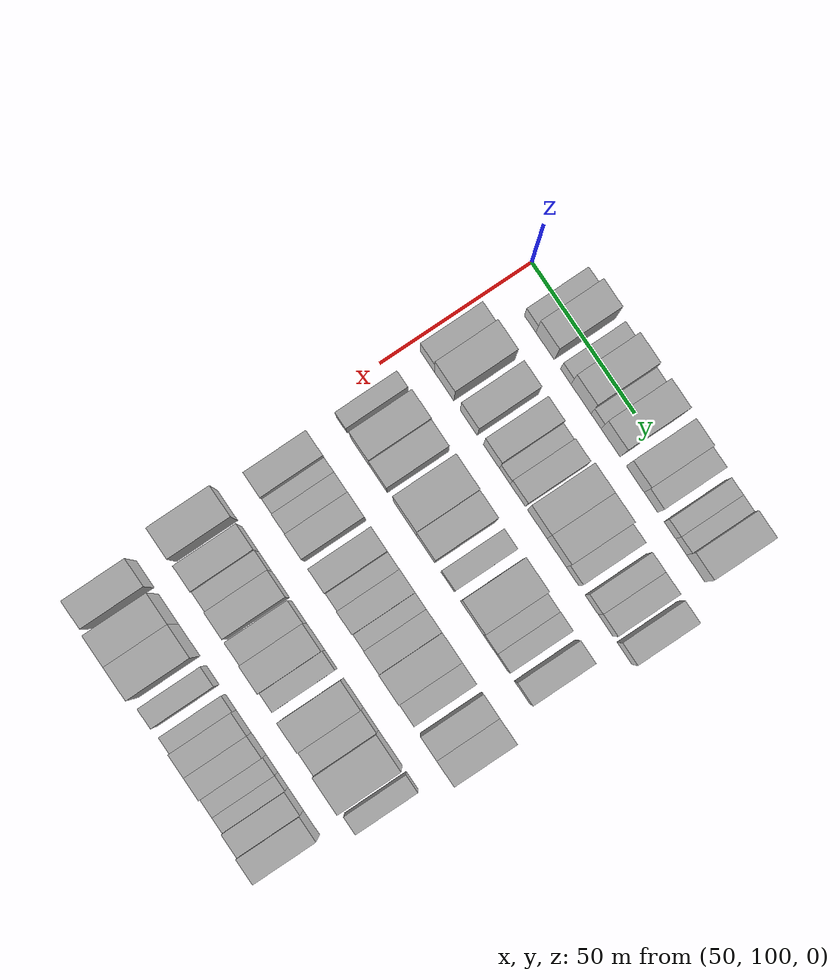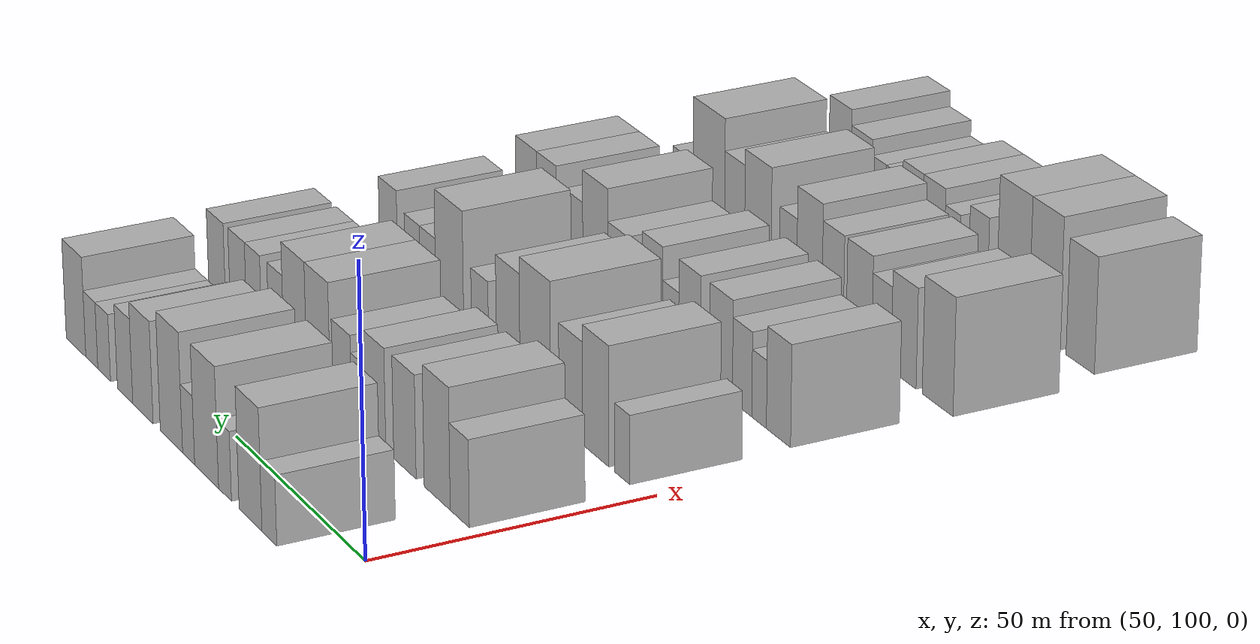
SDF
<sdf version="1.6">
 <world name="default">
  <model name="building_66">
   <static>1</static>
   <pose>50.0000 113.7992 0 0.000000 0.000000 0.000000</pose>
   <link name="link">
    <pose>0 0 6.00 0 0 0</pose>
    <collision name="collision"><geometry><box><size>20.0000 5.6793 12.0000</size></box></geometry></collision>
    <visual name="visual">
     <cast_shadows>0</cast_shadows>
     <geometry><box><size>20.0000 5.6793 12.0000</size></box></geometry>
     <material>
      <script>
       <uri>model://HANNAS_wall/materials/scripts</uri>
       <uri>model://HANNAS_wall/materials/textures</uri>
       <name>vrc/HANNAS_wall</name>
      </script>
     </material>
    </visual>
   </link>
  </model>
  <model name="building_67">
   <static>1</static>
   <pose>50.0000 121.1062 0 0.000000 0.000000 0.000000</pose>
   <link name="link">
    <pose>0 0 10.50 0 0 0</pose>
    <collision name="collision"><geometry><box><size>20.0000 8.9348 21.0000</size></box></geometry></collision>
    <visual name="visual">
     <cast_shadows>0</cast_shadows>
     <geometry><box><size>20.0000 8.9348 21.0000</size></box></geometry>
     <material>
      <script>
       <uri>model://HANNAS_wall/materials/scripts</uri>
       <uri>model://HANNAS_wall/materials/textures</uri>
       <name>vrc/HANNAS_wall</name>
      </script>
     </material>
    </visual>
   </link>
  </model>
  <model name="building_68">
   <static>1</static>
   <pose>50.0000 131.1374 0 0.000000 0.000000 0.000000</pose>
   <link name="link">
    <pose>0 0 6.00 0 0 0</pose>
    <collision name="collision"><geometry><box><size>20.0000 5.1276 12.0000</size></box></geometry></collision>
    <visual name="visual">
     <cast_shadows>0</cast_shadows>
     <geometry><box><size>20.0000 5.1276 12.0000</size></box></geometry>
     <material>
      <script>
       <uri>model://HANNAS_wall/materials/scripts</uri>
       <uri>model://HANNAS_wall/materials/textures</uri>
       <name>vrc/HANNAS_wall</name>
      </script>
     </material>
    </visual>
   </link>
  </model>
  <model name="building_69">
   <static>1</static>
   <pose>50.0000 138.5391 0 0.000000 0.000000 0.000000</pose>
   <link name="link">
    <pose>0 0 10.50 0 0 0</pose>
    <collision name="collision"><geometry><box><size>20.0000 9.6757 21.0000</size></box></geometry></collision>
    <visual name="visual">
     <cast_shadows>0</cast_shadows>
     <geometry><box><size>20.0000 9.6757 21.0000</size></box></geometry>
     <material>
      <script>
       <uri>model://HANNAS_wall/materials/scripts</uri>
       <uri>model://HANNAS_wall/materials/textures</uri>
       <name>vrc/HANNAS_wall</name>
      </script>
     </material>
    </visual>
   </link>
  </model>
  <model name="building_70">
   <static>1</static>
   <pose>50.0000 145.8445 0 0.000000 0.000000 0.000000</pose>
   <link name="link">
    <pose>0 0 6.00 0 0 0</pose>
    <collision name="collision"><geometry><box><size>20.0000 4.9352 12.0000</size></box></geometry></collision>
    <visual name="visual">
     <cast_shadows>0</cast_shadows>
     <geometry><box><size>20.0000 4.9352 12.0000</size></box></geometry>
     <material>
      <script>
       <uri>model://HANNAS_wall/materials/scripts</uri>
       <uri>model://HANNAS_wall/materials/textures</uri>
       <name>vrc/HANNAS_wall</name>
      </script>
     </material>
    </visual>
   </link>
  </model>
  <model name="building_71">
   <static>1</static>
   <pose>50.0000 152.9501 0 0.000000 0.000000 0.000000</pose>
   <link name="link">
    <pose>0 0 10.50 0 0 0</pose>
    <collision name="collision"><geometry><box><size>20.0000 9.2759 21.0000</size></box></geometry></collision>
    <visual name="visual">
     <cast_shadows>0</cast_shadows>
     <geometry><box><size>20.0000 9.2759 21.0000</size></box></geometry>
     <material>
      <script>
       <uri>model://HANNAS_wall/materials/scripts</uri>
       <uri>model://HANNAS_wall/materials/textures</uri>
       <name>vrc/HANNAS_wall</name>
      </script>
     </material>
    </visual>
   </link>
  </model>
  <model name="building_72">
   <static>1</static>
   <pose>50.0000 164.9148 0 0.000000 0.000000 0.000000</pose>
   <link name="link">
    <pose>0 0 9.00 0 0 0</pose>
    <collision name="collision"><geometry><box><size>20.0000 8.6535 18.0000</size></box></geometry></collision>
    <visual name="visual">
     <cast_shadows>0</cast_shadows>
     <geometry><box><size>20.0000 8.6535 18.0000</size></box></geometry>
     <material>
      <script>
       <uri>model://HANNAS_wall/materials/scripts</uri>
       <uri>model://HANNAS_wall/materials/textures</uri>
       <name>vrc/HANNAS_wall</name>
      </script>
     </material>
    </visual>
   </link>
  </model>
  <model name="building_73">
   <static>1</static>
   <pose>50.0000 172.5596 0 0.000000 0.000000 0.000000</pose>
   <link name="link">
    <pose>0 0 7.50 0 0 0</pose>
    <collision name="collision"><geometry><box><size>20.0000 6.6361 15.0000</size></box></geometry></collision>
    <visual name="visual">
     <cast_shadows>0</cast_shadows>
     <geometry><box><size>20.0000 6.6361 15.0000</size></box></geometry>
     <material>
      <script>
       <uri>model://HANNAS_wall/materials/scripts</uri>
       <uri>model://HANNAS_wall/materials/textures</uri>
       <name>vrc/HANNAS_wall</name>
      </script>
     </material>
    </visual>
   </link>
  </model>
  <model name="building_74">
   <static>1</static>
   <pose>50.0000 181.6789 0 0.000000 0.000000 0.000000</pose>
   <link name="link">
    <pose>0 0 6.00 0 0 0</pose>
    <collision name="collision"><geometry><box><size>20.0000 5.6025 12.0000</size></box></geometry></collision>
    <visual name="visual">
     <cast_shadows>0</cast_shadows>
     <geometry><box><size>20.0000 5.6025 12.0000</size></box></geometry>
     <material>
      <script>
       <uri>model://HANNAS_wall/materials/scripts</uri>
       <uri>model://HANNAS_wall/materials/textures</uri>
       <name>vrc/HANNAS_wall</name>
      </script>
     </material>
    </visual>
   </link>
  </model>
  <model name="building_75">
   <static>1</static>
   <pose>50.0000 187.1378 0 0.000000 0.000000 0.000000</pose>
   <link name="link">
    <pose>0 0 6.00 0 0 0</pose>
    <collision name="collision"><geometry><box><size>20.0000 5.3153 12.0000</size></box></geometry></collision>
    <visual name="visual">
     <cast_shadows>0</cast_shadows>
     <geometry><box><size>20.0000 5.3153 12.0000</size></box></geometry>
     <material>
      <script>
       <uri>model://HANNAS_wall/materials/scripts</uri>
       <uri>model://HANNAS_wall/materials/textures</uri>
       <name>vrc/HANNAS_wall</name>
      </script>
     </material>
    </visual>
   </link>
  </model>
  <model name="building_76">
   <static>1</static>
   <pose>50.0000 194.1888 0 0.000000 0.000000 0.000000</pose>
   <link name="link">
    <pose>0 0 9.00 0 0 0</pose>
    <collision name="collision"><geometry><box><size>20.0000 8.7869 18.0000</size></box></geometry></collision>
    <visual name="visual">
     <cast_shadows>0</cast_shadows>
     <geometry><box><size>20.0000 8.7869 18.0000</size></box></geometry>
     <material>
      <script>
       <uri>model://HANNAS_wall/materials/scripts</uri>
       <uri>model://HANNAS_wall/materials/textures</uri>
       <name>vrc/HANNAS_wall</name>
      </script>
     </material>
    </visual>
   </link>
  </model>
  <model name="building_175">
   <static>1</static>
   <pose>79.0000 106.6629 0 0.000000 0.000000 0.000000</pose>
   <link name="link">
    <pose>0 0 7.50 0 0 0</pose>
    <collision name="collision"><geometry><box><size>20.0000 6.8719 15.0000</size></box></geometry></collision>
    <visual name="visual">
     <cast_shadows>0</cast_shadows>
     <geometry><box><size>20.0000 6.8719 15.0000</size></box></geometry>
     <material>
      <script>
       <uri>model://HANNAS_wall/materials/scripts</uri>
       <uri>model://HANNAS_wall/materials/textures</uri>
       <name>vrc/HANNAS_wall</name>
      </script>
     </material>
    </visual>
   </link>
  </model>
  <model name="building_176">
   <static>1</static>
   <pose>79.0000 114.8595 0 0.000000 0.000000 0.000000</pose>
   <link name="link">
    <pose>0 0 10.50 0 0 0</pose>
    <collision name="collision"><geometry><box><size>20.0000 9.5214 21.0000</size></box></geometry></collision>
    <visual name="visual">
     <cast_shadows>0</cast_shadows>
     <geometry><box><size>20.0000 9.5214 21.0000</size></box></geometry>
     <material>
      <script>
       <uri>model://HANNAS_wall/materials/scripts</uri>
       <uri>model://HANNAS_wall/materials/textures</uri>
       <name>vrc/HANNAS_wall</name>
      </script>
     </material>
    </visual>
   </link>
  </model>
  <model name="building_177">
   <static>1</static>
   <pose>79.0000 126.8163 0 0.000000 0.000000 0.000000</pose>
   <link name="link">
    <pose>0 0 9.00 0 0 0</pose>
    <collision name="collision"><geometry><box><size>20.0000 8.3921 18.0000</size></box></geometry></collision>
    <visual name="visual">
     <cast_shadows>0</cast_shadows>
     <geometry><box><size>20.0000 8.3921 18.0000</size></box></geometry>
     <material>
      <script>
       <uri>model://HANNAS_wall/materials/scripts</uri>
       <uri>model://HANNAS_wall/materials/textures</uri>
       <name>vrc/HANNAS_wall</name>
      </script>
     </material>
    </visual>
   </link>
  </model>
  <model name="building_178">
   <static>1</static>
   <pose>79.0000 137.9398 0 0.000000 0.000000 0.000000</pose>
   <link name="link">
    <pose>0 0 9.00 0 0 0</pose>
    <collision name="collision"><geometry><box><size>20.0000 7.8549 18.0000</size></box></geometry></collision>
    <visual name="visual">
     <cast_shadows>0</cast_shadows>
     <geometry><box><size>20.0000 7.8549 18.0000</size></box></geometry>
     <material>
      <script>
       <uri>model://HANNAS_wall/materials/scripts</uri>
       <uri>model://HANNAS_wall/materials/textures</uri>
       <name>vrc/HANNAS_wall</name>
      </script>
     </material>
    </visual>
   </link>
  </model>
  <model name="building_179">
   <static>1</static>
   <pose>79.0000 144.4929 0 0.000000 0.000000 0.000000</pose>
   <link name="link">
    <pose>0 0 6.00 0 0 0</pose>
    <collision name="collision"><geometry><box><size>20.0000 5.2512 12.0000</size></box></geometry></collision>
    <visual name="visual">
     <cast_shadows>0</cast_shadows>
     <geometry><box><size>20.0000 5.2512 12.0000</size></box></geometry>
     <material>
      <script>
       <uri>model://HANNAS_wall/materials/scripts</uri>
       <uri>model://HANNAS_wall/materials/textures</uri>
       <name>vrc/HANNAS_wall</name>
      </script>
     </material>
    </visual>
   </link>
  </model>
  <model name="building_180">
   <static>1</static>
   <pose>79.0000 150.7941 0 0.000000 0.000000 0.000000</pose>
   <link name="link">
    <pose>0 0 7.50 0 0 0</pose>
    <collision name="collision"><geometry><box><size>20.0000 7.3513 15.0000</size></box></geometry></collision>
    <visual name="visual">
     <cast_shadows>0</cast_shadows>
     <geometry><box><size>20.0000 7.3513 15.0000</size></box></geometry>
     <material>
      <script>
       <uri>model://HANNAS_wall/materials/scripts</uri>
       <uri>model://HANNAS_wall/materials/textures</uri>
       <name>vrc/HANNAS_wall</name>
      </script>
     </material>
    </visual>
   </link>
  </model>
  <model name="building_181">
   <static>1</static>
   <pose>79.0000 160.1889 0 0.000000 0.000000 0.000000</pose>
   <link name="link">
    <pose>0 0 10.50 0 0 0</pose>
    <collision name="collision"><geometry><box><size>20.0000 9.4383 21.0000</size></box></geometry></collision>
    <visual name="visual">
     <cast_shadows>0</cast_shadows>
     <geometry><box><size>20.0000 9.4383 21.0000</size></box></geometry>
     <material>
      <script>
       <uri>model://HANNAS_wall/materials/scripts</uri>
       <uri>model://HANNAS_wall/materials/textures</uri>
       <name>vrc/HANNAS_wall</name>
      </script>
     </material>
    </visual>
   </link>
  </model>
  <model name="building_182">
   <static>1</static>
   <pose>79.0000 169.5827 0 0.000000 0.000000 0.000000</pose>
   <link name="link">
    <pose>0 0 10.50 0 0 0</pose>
    <collision name="collision"><geometry><box><size>20.0000 9.3494 21.0000</size></box></geometry></collision>
    <visual name="visual">
     <cast_shadows>0</cast_shadows>
     <geometry><box><size>20.0000 9.3494 21.0000</size></box></geometry>
     <material>
      <script>
       <uri>model://HANNAS_wall/materials/scripts</uri>
       <uri>model://HANNAS_wall/materials/textures</uri>
       <name>vrc/HANNAS_wall</name>
      </script>
     </material>
    </visual>
   </link>
  </model>
  <model name="building_183">
   <static>1</static>
   <pose>79.0000 177.3534 0 0.000000 0.000000 0.000000</pose>
   <link name="link">
    <pose>0 0 7.50 0 0 0</pose>
    <collision name="collision"><geometry><box><size>20.0000 6.1920 15.0000</size></box></geometry></collision>
    <visual name="visual">
     <cast_shadows>0</cast_shadows>
     <geometry><box><size>20.0000 6.1920 15.0000</size></box></geometry>
     <material>
      <script>
       <uri>model://HANNAS_wall/materials/scripts</uri>
       <uri>model://HANNAS_wall/materials/textures</uri>
       <name>vrc/HANNAS_wall</name>
      </script>
     </material>
    </visual>
   </link>
  </model>
  <model name="building_184">
   <static>1</static>
   <pose>79.0000 186.6419 0 0.000000 0.000000 0.000000</pose>
   <link name="link">
    <pose>0 0 7.50 0 0 0</pose>
    <collision name="collision"><geometry><box><size>20.0000 6.3851 15.0000</size></box></geometry></collision>
    <visual name="visual">
     <cast_shadows>0</cast_shadows>
     <geometry><box><size>20.0000 6.3851 15.0000</size></box></geometry>
     <material>
      <script>
       <uri>model://HANNAS_wall/materials/scripts</uri>
       <uri>model://HANNAS_wall/materials/textures</uri>
       <name>vrc/HANNAS_wall</name>
      </script>
     </material>
    </visual>
   </link>
  </model>
  <model name="building_185">
   <static>1</static>
   <pose>79.0000 193.3549 0 0.000000 0.000000 0.000000</pose>
   <link name="link">
    <pose>0 0 7.50 0 0 0</pose>
    <collision name="collision"><geometry><box><size>20.0000 7.0407 15.0000</size></box></geometry></collision>
    <visual name="visual">
     <cast_shadows>0</cast_shadows>
     <geometry><box><size>20.0000 7.0407 15.0000</size></box></geometry>
     <material>
      <script>
       <uri>model://HANNAS_wall/materials/scripts</uri>
       <uri>model://HANNAS_wall/materials/textures</uri>
       <name>vrc/HANNAS_wall</name>
      </script>
     </material>
    </visual>
   </link>
  </model>
  <model name="building_186">
   <static>1</static>
   <pose>79.0000 202.4944 0 0.000000 0.000000 0.000000</pose>
   <link name="link">
    <pose>0 0 7.50 0 0 0</pose>
    <collision name="collision"><geometry><box><size>20.0000 7.2384 15.0000</size></box></geometry></collision>
    <visual name="visual">
     <cast_shadows>0</cast_shadows>
     <geometry><box><size>20.0000 7.2384 15.0000</size></box></geometry>
     <material>
      <script>
       <uri>model://HANNAS_wall/materials/scripts</uri>
       <uri>model://HANNAS_wall/materials/textures</uri>
       <name>vrc/HANNAS_wall</name>
      </script>
     </material>
    </visual>
   </link>
  </model>
  <model name="building_280">
   <static>1</static>
   <pose>108.0000 108.0761 0 0.000000 0.000000 0.000000</pose>
   <link name="link">
    <pose>0 0 6.00 0 0 0</pose>
    <collision name="collision"><geometry><box><size>20.0000 5.2599 12.0000</size></box></geometry></collision>
    <visual name="visual">
     <cast_shadows>0</cast_shadows>
     <geometry><box><size>20.0000 5.2599 12.0000</size></box></geometry>
     <material>
      <script>
       <uri>model://HANNAS_wall/materials/scripts</uri>
       <uri>model://HANNAS_wall/materials/textures</uri>
       <name>vrc/HANNAS_wall</name>
      </script>
     </material>
    </visual>
   </link>
  </model>
  <model name="building_281">
   <static>1</static>
   <pose>108.0000 117.3055 0 0.000000 0.000000 0.000000</pose>
   <link name="link">
    <pose>0 0 10.50 0 0 0</pose>
    <collision name="collision"><geometry><box><size>20.0000 9.1989 21.0000</size></box></geometry></collision>
    <visual name="visual">
     <cast_shadows>0</cast_shadows>
     <geometry><box><size>20.0000 9.1989 21.0000</size></box></geometry>
     <material>
      <script>
       <uri>model://HANNAS_wall/materials/scripts</uri>
       <uri>model://HANNAS_wall/materials/textures</uri>
       <name>vrc/HANNAS_wall</name>
      </script>
     </material>
    </visual>
   </link>
  </model>
  <model name="building_282">
   <static>1</static>
   <pose>108.0000 126.1293 0 0.000000 0.000000 0.000000</pose>
   <link name="link">
    <pose>0 0 9.00 0 0 0</pose>
    <collision name="collision"><geometry><box><size>20.0000 8.4486 18.0000</size></box></geometry></collision>
    <visual name="visual">
     <cast_shadows>0</cast_shadows>
     <geometry><box><size>20.0000 8.4486 18.0000</size></box></geometry>
     <material>
      <script>
       <uri>model://HANNAS_wall/materials/scripts</uri>
       <uri>model://HANNAS_wall/materials/textures</uri>
       <name>vrc/HANNAS_wall</name>
      </script>
     </material>
    </visual>
   </link>
  </model>
  <model name="building_283">
   <static>1</static>
   <pose>108.0000 138.9848 0 0.000000 0.000000 0.000000</pose>
   <link name="link">
    <pose>0 0 12.00 0 0 0</pose>
    <collision name="collision"><geometry><box><size>20.0000 11.2625 24.0000</size></box></geometry></collision>
    <visual name="visual">
     <cast_shadows>0</cast_shadows>
     <geometry><box><size>20.0000 11.2625 24.0000</size></box></geometry>
     <material>
      <script>
       <uri>model://HANNAS_wall/materials/scripts</uri>
       <uri>model://HANNAS_wall/materials/textures</uri>
       <name>vrc/HANNAS_wall</name>
      </script>
     </material>
    </visual>
   </link>
  </model>
  <model name="building_284">
   <static>1</static>
   <pose>108.0000 149.0137 0 0.000000 0.000000 0.000000</pose>
   <link name="link">
    <pose>0 0 10.50 0 0 0</pose>
    <collision name="collision"><geometry><box><size>20.0000 8.7954 21.0000</size></box></geometry></collision>
    <visual name="visual">
     <cast_shadows>0</cast_shadows>
     <geometry><box><size>20.0000 8.7954 21.0000</size></box></geometry>
     <material>
      <script>
       <uri>model://HANNAS_wall/materials/scripts</uri>
       <uri>model://HANNAS_wall/materials/textures</uri>
       <name>vrc/HANNAS_wall</name>
      </script>
     </material>
    </visual>
   </link>
  </model>
  <model name="building_285">
   <static>1</static>
   <pose>108.0000 159.6595 0 0.000000 0.000000 0.000000</pose>
   <link name="link">
    <pose>0 0 7.50 0 0 0</pose>
    <collision name="collision"><geometry><box><size>20.0000 6.4962 15.0000</size></box></geometry></collision>
    <visual name="visual">
     <cast_shadows>0</cast_shadows>
     <geometry><box><size>20.0000 6.4962 15.0000</size></box></geometry>
     <material>
      <script>
       <uri>model://HANNAS_wall/materials/scripts</uri>
       <uri>model://HANNAS_wall/materials/textures</uri>
       <name>vrc/HANNAS_wall</name>
      </script>
     </material>
    </visual>
   </link>
  </model>
  <model name="building_286">
   <static>1</static>
   <pose>108.0000 171.3430 0 0.000000 0.000000 0.000000</pose>
   <link name="link">
    <pose>0 0 12.00 0 0 0</pose>
    <collision name="collision"><geometry><box><size>20.0000 10.8708 24.0000</size></box></geometry></collision>
    <visual name="visual">
     <cast_shadows>0</cast_shadows>
     <geometry><box><size>20.0000 10.8708 24.0000</size></box></geometry>
     <material>
      <script>
       <uri>model://HANNAS_wall/materials/scripts</uri>
       <uri>model://HANNAS_wall/materials/textures</uri>
       <name>vrc/HANNAS_wall</name>
      </script>
     </material>
    </visual>
   </link>
  </model>
  <model name="building_287">
   <static>1</static>
   <pose>108.0000 179.8673 0 0.000000 0.000000 0.000000</pose>
   <link name="link">
    <pose>0 0 7.50 0 0 0</pose>
    <collision name="collision"><geometry><box><size>20.0000 6.1777 15.0000</size></box></geometry></collision>
    <visual name="visual">
     <cast_shadows>0</cast_shadows>
     <geometry><box><size>20.0000 6.1777 15.0000</size></box></geometry>
     <material>
      <script>
       <uri>model://HANNAS_wall/materials/scripts</uri>
       <uri>model://HANNAS_wall/materials/textures</uri>
       <name>vrc/HANNAS_wall</name>
      </script>
     </material>
    </visual>
   </link>
  </model>
  <model name="building_288">
   <static>1</static>
   <pose>108.0000 185.9898 0 0.000000 0.000000 0.000000</pose>
   <link name="link">
    <pose>0 0 7.50 0 0 0</pose>
    <collision name="collision"><geometry><box><size>20.0000 6.0672 15.0000</size></box></geometry></collision>
    <visual name="visual">
     <cast_shadows>0</cast_shadows>
     <geometry><box><size>20.0000 6.0672 15.0000</size></box></geometry>
     <material>
      <script>
       <uri>model://HANNAS_wall/materials/scripts</uri>
       <uri>model://HANNAS_wall/materials/textures</uri>
       <name>vrc/HANNAS_wall</name>
      </script>
     </material>
    </visual>
   </link>
  </model>
  <model name="building_289">
   <static>1</static>
   <pose>108.0000 195.6798 0 0.000000 0.000000 0.000000</pose>
   <link name="link">
    <pose>0 0 9.00 0 0 0</pose>
    <collision name="collision"><geometry><box><size>20.0000 7.3128 18.0000</size></box></geometry></collision>
    <visual name="visual">
     <cast_shadows>0</cast_shadows>
     <geometry><box><size>20.0000 7.3128 18.0000</size></box></geometry>
     <material>
      <script>
       <uri>model://HANNAS_wall/materials/scripts</uri>
       <uri>model://HANNAS_wall/materials/textures</uri>
       <name>vrc/HANNAS_wall</name>
      </script>
     </material>
    </visual>
   </link>
  </model>
  <model name="building_396">
   <static>1</static>
   <pose>137.0000 109.8066 0 0.000000 0.000000 0.000000</pose>
   <link name="link">
    <pose>0 0 9.00 0 0 0</pose>
    <collision name="collision"><geometry><box><size>20.0000 8.0484 18.0000</size></box></geometry></collision>
    <visual name="visual">
     <cast_shadows>0</cast_shadows>
     <geometry><box><size>20.0000 8.0484 18.0000</size></box></geometry>
     <material>
      <script>
       <uri>model://HANNAS_wall/materials/scripts</uri>
       <uri>model://HANNAS_wall/materials/textures</uri>
       <name>vrc/HANNAS_wall</name>
      </script>
     </material>
    </visual>
   </link>
  </model>
  <model name="building_397">
   <static>1</static>
   <pose>137.0000 116.3072 0 0.000000 0.000000 0.000000</pose>
   <link name="link">
    <pose>0 0 6.00 0 0 0</pose>
    <collision name="collision"><geometry><box><size>20.0000 4.9528 12.0000</size></box></geometry></collision>
    <visual name="visual">
     <cast_shadows>0</cast_shadows>
     <geometry><box><size>20.0000 4.9528 12.0000</size></box></geometry>
     <material>
      <script>
       <uri>model://HANNAS_wall/materials/scripts</uri>
       <uri>model://HANNAS_wall/materials/textures</uri>
       <name>vrc/HANNAS_wall</name>
      </script>
     </material>
    </visual>
   </link>
  </model>
  <model name="building_398">
   <static>1</static>
   <pose>137.0000 122.0824 0 0.000000 0.000000 0.000000</pose>
   <link name="link">
    <pose>0 0 7.50 0 0 0</pose>
    <collision name="collision"><geometry><box><size>20.0000 6.5976 15.0000</size></box></geometry></collision>
    <visual name="visual">
     <cast_shadows>0</cast_shadows>
     <geometry><box><size>20.0000 6.5976 15.0000</size></box></geometry>
     <material>
      <script>
       <uri>model://HANNAS_wall/materials/scripts</uri>
       <uri>model://HANNAS_wall/materials/textures</uri>
       <name>vrc/HANNAS_wall</name>
      </script>
     </material>
    </visual>
   </link>
  </model>
  <model name="building_399">
   <static>1</static>
   <pose>137.0000 129.3961 0 0.000000 0.000000 0.000000</pose>
   <link name="link">
    <pose>0 0 9.00 0 0 0</pose>
    <collision name="collision"><geometry><box><size>20.0000 8.0297 18.0000</size></box></geometry></collision>
    <visual name="visual">
     <cast_shadows>0</cast_shadows>
     <geometry><box><size>20.0000 8.0297 18.0000</size></box></geometry>
     <material>
      <script>
       <uri>model://HANNAS_wall/materials/scripts</uri>
       <uri>model://HANNAS_wall/materials/textures</uri>
       <name>vrc/HANNAS_wall</name>
      </script>
     </material>
    </visual>
   </link>
  </model>
  <model name="building_400">
   <static>1</static>
   <pose>137.0000 140.3117 0 0.000000 0.000000 0.000000</pose>
   <link name="link">
    <pose>0 0 9.00 0 0 0</pose>
    <collision name="collision"><geometry><box><size>20.0000 7.8015 18.0000</size></box></geometry></collision>
    <visual name="visual">
     <cast_shadows>0</cast_shadows>
     <geometry><box><size>20.0000 7.8015 18.0000</size></box></geometry>
     <material>
      <script>
       <uri>model://HANNAS_wall/materials/scripts</uri>
       <uri>model://HANNAS_wall/materials/textures</uri>
       <name>vrc/HANNAS_wall</name>
      </script>
     </material>
    </visual>
   </link>
  </model>
  <model name="building_401">
   <static>1</static>
   <pose>137.0000 147.0669 0 0.000000 0.000000 0.000000</pose>
   <link name="link">
    <pose>0 0 6.00 0 0 0</pose>
    <collision name="collision"><geometry><box><size>20.0000 5.7090 12.0000</size></box></geometry></collision>
    <visual name="visual">
     <cast_shadows>0</cast_shadows>
     <geometry><box><size>20.0000 5.7090 12.0000</size></box></geometry>
     <material>
      <script>
       <uri>model://HANNAS_wall/materials/scripts</uri>
       <uri>model://HANNAS_wall/materials/textures</uri>
       <name>vrc/HANNAS_wall</name>
      </script>
     </material>
    </visual>
   </link>
  </model>
  <model name="building_402">
   <static>1</static>
   <pose>137.0000 153.6256 0 0.000000 0.000000 0.000000</pose>
   <link name="link">
    <pose>0 0 9.00 0 0 0</pose>
    <collision name="collision"><geometry><box><size>20.0000 7.4084 18.0000</size></box></geometry></collision>
    <visual name="visual">
     <cast_shadows>0</cast_shadows>
     <geometry><box><size>20.0000 7.4084 18.0000</size></box></geometry>
     <material>
      <script>
       <uri>model://HANNAS_wall/materials/scripts</uri>
       <uri>model://HANNAS_wall/materials/textures</uri>
       <name>vrc/HANNAS_wall</name>
      </script>
     </material>
    </visual>
   </link>
  </model>
  <model name="building_403">
   <static>1</static>
   <pose>137.0000 159.9444 0 0.000000 0.000000 0.000000</pose>
   <link name="link">
    <pose>0 0 6.00 0 0 0</pose>
    <collision name="collision"><geometry><box><size>20.0000 5.2292 12.0000</size></box></geometry></collision>
    <visual name="visual">
     <cast_shadows>0</cast_shadows>
     <geometry><box><size>20.0000 5.2292 12.0000</size></box></geometry>
     <material>
      <script>
       <uri>model://HANNAS_wall/materials/scripts</uri>
       <uri>model://HANNAS_wall/materials/textures</uri>
       <name>vrc/HANNAS_wall</name>
      </script>
     </material>
    </visual>
   </link>
  </model>
  <model name="building_404">
   <static>1</static>
   <pose>137.0000 166.2945 0 0.000000 0.000000 0.000000</pose>
   <link name="link">
    <pose>0 0 7.50 0 0 0</pose>
    <collision name="collision"><geometry><box><size>20.0000 7.4710 15.0000</size></box></geometry></collision>
    <visual name="visual">
     <cast_shadows>0</cast_shadows>
     <geometry><box><size>20.0000 7.4710 15.0000</size></box></geometry>
     <material>
      <script>
       <uri>model://HANNAS_wall/materials/scripts</uri>
       <uri>model://HANNAS_wall/materials/textures</uri>
       <name>vrc/HANNAS_wall</name>
      </script>
     </material>
    </visual>
   </link>
  </model>
  <model name="building_405">
   <static>1</static>
   <pose>137.0000 174.7302 0 0.000000 0.000000 0.000000</pose>
   <link name="link">
    <pose>0 0 10.50 0 0 0</pose>
    <collision name="collision"><geometry><box><size>20.0000 9.4004 21.0000</size></box></geometry></collision>
    <visual name="visual">
     <cast_shadows>0</cast_shadows>
     <geometry><box><size>20.0000 9.4004 21.0000</size></box></geometry>
     <material>
      <script>
       <uri>model://HANNAS_wall/materials/scripts</uri>
       <uri>model://HANNAS_wall/materials/textures</uri>
       <name>vrc/HANNAS_wall</name>
      </script>
     </material>
    </visual>
   </link>
  </model>
  <model name="building_406">
   <static>1</static>
   <pose>137.0000 182.9729 0 0.000000 0.000000 0.000000</pose>
   <link name="link">
    <pose>0 0 7.50 0 0 0</pose>
    <collision name="collision"><geometry><box><size>20.0000 7.0850 15.0000</size></box></geometry></collision>
    <visual name="visual">
     <cast_shadows>0</cast_shadows>
     <geometry><box><size>20.0000 7.0850 15.0000</size></box></geometry>
     <material>
      <script>
       <uri>model://HANNAS_wall/materials/scripts</uri>
       <uri>model://HANNAS_wall/materials/textures</uri>
       <name>vrc/HANNAS_wall</name>
      </script>
     </material>
    </visual>
   </link>
  </model>
  <model name="building_407">
   <static>1</static>
   <pose>137.0000 193.3287 0 0.000000 0.000000 0.000000</pose>
   <link name="link">
    <pose>0 0 9.00 0 0 0</pose>
    <collision name="collision"><geometry><box><size>20.0000 7.6265 18.0000</size></box></geometry></collision>
    <visual name="visual">
     <cast_shadows>0</cast_shadows>
     <geometry><box><size>20.0000 7.6265 18.0000</size></box></geometry>
     <material>
      <script>
       <uri>model://HANNAS_wall/materials/scripts</uri>
       <uri>model://HANNAS_wall/materials/textures</uri>
       <name>vrc/HANNAS_wall</name>
      </script>
     </material>
    </visual>
   </link>
  </model>
  <model name="building_408">
   <static>1</static>
   <pose>137.0000 201.2691 0 0.000000 0.000000 0.000000</pose>
   <link name="link">
    <pose>0 0 9.00 0 0 0</pose>
    <collision name="collision"><geometry><box><size>20.0000 8.2543 18.0000</size></box></geometry></collision>
    <visual name="visual">
     <cast_shadows>0</cast_shadows>
     <geometry><box><size>20.0000 8.2543 18.0000</size></box></geometry>
     <material>
      <script>
       <uri>model://HANNAS_wall/materials/scripts</uri>
       <uri>model://HANNAS_wall/materials/textures</uri>
       <name>vrc/HANNAS_wall</name>
      </script>
     </material>
    </visual>
   </link>
  </model>
  <model name="building_517">
   <static>1</static>
   <pose>166.0000 108.9870 0 0.000000 0.000000 0.000000</pose>
   <link name="link">
    <pose>0 0 10.50 0 0 0</pose>
    <collision name="collision"><geometry><box><size>20.0000 9.9068 21.0000</size></box></geometry></collision>
    <visual name="visual">
     <cast_shadows>0</cast_shadows>
     <geometry><box><size>20.0000 9.9068 21.0000</size></box></geometry>
     <material>
      <script>
       <uri>model://HANNAS_wall/materials/scripts</uri>
       <uri>model://HANNAS_wall/materials/textures</uri>
       <name>vrc/HANNAS_wall</name>
      </script>
     </material>
    </visual>
   </link>
  </model>
  <model name="building_518">
   <static>1</static>
   <pose>166.0000 120.0534 0 0.000000 0.000000 0.000000</pose>
   <link name="link">
    <pose>0 0 9.00 0 0 0</pose>
    <collision name="collision"><geometry><box><size>20.0000 8.2260 18.0000</size></box></geometry></collision>
    <visual name="visual">
     <cast_shadows>0</cast_shadows>
     <geometry><box><size>20.0000 8.2260 18.0000</size></box></geometry>
     <material>
      <script>
       <uri>model://HANNAS_wall/materials/scripts</uri>
       <uri>model://HANNAS_wall/materials/textures</uri>
       <name>vrc/HANNAS_wall</name>
      </script>
     </material>
    </visual>
   </link>
  </model>
  <model name="building_519">
   <static>1</static>
   <pose>166.0000 127.3998 0 0.000000 0.000000 0.000000</pose>
   <link name="link">
    <pose>0 0 7.50 0 0 0</pose>
    <collision name="collision"><geometry><box><size>20.0000 6.4667 15.0000</size></box></geometry></collision>
    <visual name="visual">
     <cast_shadows>0</cast_shadows>
     <geometry><box><size>20.0000 6.4667 15.0000</size></box></geometry>
     <material>
      <script>
       <uri>model://HANNAS_wall/materials/scripts</uri>
       <uri>model://HANNAS_wall/materials/textures</uri>
       <name>vrc/HANNAS_wall</name>
      </script>
     </material>
    </visual>
   </link>
  </model>
  <model name="building_520">
   <static>1</static>
   <pose>166.0000 134.9332 0 0.000000 0.000000 0.000000</pose>
   <link name="link">
    <pose>0 0 9.00 0 0 0</pose>
    <collision name="collision"><geometry><box><size>20.0000 8.6002 18.0000</size></box></geometry></collision>
    <visual name="visual">
     <cast_shadows>0</cast_shadows>
     <geometry><box><size>20.0000 8.6002 18.0000</size></box></geometry>
     <material>
      <script>
       <uri>model://HANNAS_wall/materials/scripts</uri>
       <uri>model://HANNAS_wall/materials/textures</uri>
       <name>vrc/HANNAS_wall</name>
      </script>
     </material>
    </visual>
   </link>
  </model>
  <model name="building_521">
   <static>1</static>
   <pose>166.0000 143.9181 0 0.000000 0.000000 0.000000</pose>
   <link name="link">
    <pose>0 0 9.00 0 0 0</pose>
    <collision name="collision"><geometry><box><size>20.0000 7.3695 18.0000</size></box></geometry></collision>
    <visual name="visual">
     <cast_shadows>0</cast_shadows>
     <geometry><box><size>20.0000 7.3695 18.0000</size></box></geometry>
     <material>
      <script>
       <uri>model://HANNAS_wall/materials/scripts</uri>
       <uri>model://HANNAS_wall/materials/textures</uri>
       <name>vrc/HANNAS_wall</name>
      </script>
     </material>
    </visual>
   </link>
  </model>
  <model name="building_522">
   <static>1</static>
   <pose>166.0000 152.0084 0 0.000000 0.000000 0.000000</pose>
   <link name="link">
    <pose>0 0 10.50 0 0 0</pose>
    <collision name="collision"><geometry><box><size>20.0000 8.8113 21.0000</size></box></geometry></collision>
    <visual name="visual">
     <cast_shadows>0</cast_shadows>
     <geometry><box><size>20.0000 8.8113 21.0000</size></box></geometry>
     <material>
      <script>
       <uri>model://HANNAS_wall/materials/scripts</uri>
       <uri>model://HANNAS_wall/materials/textures</uri>
       <name>vrc/HANNAS_wall</name>
      </script>
     </material>
    </visual>
   </link>
  </model>
  <model name="building_523">
   <static>1</static>
   <pose>166.0000 159.4506 0 0.000000 0.000000 0.000000</pose>
   <link name="link">
    <pose>0 0 7.50 0 0 0</pose>
    <collision name="collision"><geometry><box><size>20.0000 6.0730 15.0000</size></box></geometry></collision>
    <visual name="visual">
     <cast_shadows>0</cast_shadows>
     <geometry><box><size>20.0000 6.0730 15.0000</size></box></geometry>
     <material>
      <script>
       <uri>model://HANNAS_wall/materials/scripts</uri>
       <uri>model://HANNAS_wall/materials/textures</uri>
       <name>vrc/HANNAS_wall</name>
      </script>
     </material>
    </visual>
   </link>
  </model>
  <model name="building_524">
   <static>1</static>
   <pose>166.0000 170.2434 0 0.000000 0.000000 0.000000</pose>
   <link name="link">
    <pose>0 0 10.50 0 0 0</pose>
    <collision name="collision"><geometry><box><size>20.0000 9.5127 21.0000</size></box></geometry></collision>
    <visual name="visual">
     <cast_shadows>0</cast_shadows>
     <geometry><box><size>20.0000 9.5127 21.0000</size></box></geometry>
     <material>
      <script>
       <uri>model://HANNAS_wall/materials/scripts</uri>
       <uri>model://HANNAS_wall/materials/textures</uri>
       <name>vrc/HANNAS_wall</name>
      </script>
     </material>
    </visual>
   </link>
  </model>
  <model name="building_525">
   <static>1</static>
   <pose>166.0000 178.6585 0 0.000000 0.000000 0.000000</pose>
   <link name="link">
    <pose>0 0 9.00 0 0 0</pose>
    <collision name="collision"><geometry><box><size>20.0000 7.3175 18.0000</size></box></geometry></collision>
    <visual name="visual">
     <cast_shadows>0</cast_shadows>
     <geometry><box><size>20.0000 7.3175 18.0000</size></box></geometry>
     <material>
      <script>
       <uri>model://HANNAS_wall/materials/scripts</uri>
       <uri>model://HANNAS_wall/materials/textures</uri>
       <name>vrc/HANNAS_wall</name>
      </script>
     </material>
    </visual>
   </link>
  </model>
  <model name="building_526">
   <static>1</static>
   <pose>166.0000 188.1484 0 0.000000 0.000000 0.000000</pose>
   <link name="link">
    <pose>0 0 12.00 0 0 0</pose>
    <collision name="collision"><geometry><box><size>20.0000 11.6623 24.0000</size></box></geometry></collision>
    <visual name="visual">
     <cast_shadows>0</cast_shadows>
     <geometry><box><size>20.0000 11.6623 24.0000</size></box></geometry>
     <material>
      <script>
       <uri>model://HANNAS_wall/materials/scripts</uri>
       <uri>model://HANNAS_wall/materials/textures</uri>
       <name>vrc/HANNAS_wall</name>
      </script>
     </material>
    </visual>
   </link>
  </model>
  <model name="building_527">
   <static>1</static>
   <pose>166.0000 198.8523 0 0.000000 0.000000 0.000000</pose>
   <link name="link">
    <pose>0 0 6.00 0 0 0</pose>
    <collision name="collision"><geometry><box><size>20.0000 5.7455 12.0000</size></box></geometry></collision>
    <visual name="visual">
     <cast_shadows>0</cast_shadows>
     <geometry><box><size>20.0000 5.7455 12.0000</size></box></geometry>
     <material>
      <script>
       <uri>model://HANNAS_wall/materials/scripts</uri>
       <uri>model://HANNAS_wall/materials/textures</uri>
       <name>vrc/HANNAS_wall</name>
      </script>
     </material>
    </visual>
   </link>
  </model>
  <model name="building_636">
   <static>1</static>
   <pose>195.0000 111.9896 0 0.000000 0.000000 0.000000</pose>
   <link name="link">
    <pose>0 0 10.50 0 0 0</pose>
    <collision name="collision"><geometry><box><size>20.0000 8.8862 21.0000</size></box></geometry></collision>
    <visual name="visual">
     <cast_shadows>0</cast_shadows>
     <geometry><box><size>20.0000 8.8862 21.0000</size></box></geometry>
     <material>
      <script>
       <uri>model://HANNAS_wall/materials/scripts</uri>
       <uri>model://HANNAS_wall/materials/textures</uri>
       <name>vrc/HANNAS_wall</name>
      </script>
     </material>
    </visual>
   </link>
  </model>
  <model name="building_637">
   <static>1</static>
   <pose>195.0000 123.3752 0 0.000000 0.000000 0.000000</pose>
   <link name="link">
    <pose>0 0 12.00 0 0 0</pose>
    <collision name="collision"><geometry><box><size>20.0000 9.8851 24.0000</size></box></geometry></collision>
    <visual name="visual">
     <cast_shadows>0</cast_shadows>
     <geometry><box><size>20.0000 9.8851 24.0000</size></box></geometry>
     <material>
      <script>
       <uri>model://HANNAS_wall/materials/scripts</uri>
       <uri>model://HANNAS_wall/materials/textures</uri>
       <name>vrc/HANNAS_wall</name>
      </script>
     </material>
    </visual>
   </link>
  </model>
  <model name="building_638">
   <static>1</static>
   <pose>195.0000 133.5826 0 0.000000 0.000000 0.000000</pose>
   <link name="link">
    <pose>0 0 12.00 0 0 0</pose>
    <collision name="collision"><geometry><box><size>20.0000 10.5297 24.0000</size></box></geometry></collision>
    <visual name="visual">
     <cast_shadows>0</cast_shadows>
     <geometry><box><size>20.0000 10.5297 24.0000</size></box></geometry>
     <material>
      <script>
       <uri>model://HANNAS_wall/materials/scripts</uri>
       <uri>model://HANNAS_wall/materials/textures</uri>
       <name>vrc/HANNAS_wall</name>
      </script>
     </material>
    </visual>
   </link>
  </model>
  <model name="building_639">
   <static>1</static>
   <pose>195.0000 145.0307 0 0.000000 0.000000 0.000000</pose>
   <link name="link">
    <pose>0 0 7.50 0 0 0</pose>
    <collision name="collision"><geometry><box><size>20.0000 6.3666 15.0000</size></box></geometry></collision>
    <visual name="visual">
     <cast_shadows>0</cast_shadows>
     <geometry><box><size>20.0000 6.3666 15.0000</size></box></geometry>
     <material>
      <script>
       <uri>model://HANNAS_wall/materials/scripts</uri>
       <uri>model://HANNAS_wall/materials/textures</uri>
       <name>vrc/HANNAS_wall</name>
      </script>
     </material>
    </visual>
   </link>
  </model>
  <model name="building_640">
   <static>1</static>
   <pose>195.0000 153.8205 0 0.000000 0.000000 0.000000</pose>
   <link name="link">
    <pose>0 0 6.00 0 0 0</pose>
    <collision name="collision"><geometry><box><size>20.0000 5.2128 12.0000</size></box></geometry></collision>
    <visual name="visual">
     <cast_shadows>0</cast_shadows>
     <geometry><box><size>20.0000 5.2128 12.0000</size></box></geometry>
     <material>
      <script>
       <uri>model://HANNAS_wall/materials/scripts</uri>
       <uri>model://HANNAS_wall/materials/textures</uri>
       <name>vrc/HANNAS_wall</name>
      </script>
     </material>
    </visual>
   </link>
  </model>
  <model name="building_641">
   <static>1</static>
   <pose>195.0000 160.1325 0 0.000000 0.000000 0.000000</pose>
   <link name="link">
    <pose>0 0 7.50 0 0 0</pose>
    <collision name="collision"><geometry><box><size>20.0000 7.4114 15.0000</size></box></geometry></collision>
    <visual name="visual">
     <cast_shadows>0</cast_shadows>
     <geometry><box><size>20.0000 7.4114 15.0000</size></box></geometry>
     <material>
      <script>
       <uri>model://HANNAS_wall/materials/scripts</uri>
       <uri>model://HANNAS_wall/materials/textures</uri>
       <name>vrc/HANNAS_wall</name>
      </script>
     </material>
    </visual>
   </link>
  </model>
  <model name="building_642">
   <static>1</static>
   <pose>195.0000 167.4124 0 0.000000 0.000000 0.000000</pose>
   <link name="link">
    <pose>0 0 7.50 0 0 0</pose>
    <collision name="collision"><geometry><box><size>20.0000 7.1484 15.0000</size></box></geometry></collision>
    <visual name="visual">
     <cast_shadows>0</cast_shadows>
     <geometry><box><size>20.0000 7.1484 15.0000</size></box></geometry>
     <material>
      <script>
       <uri>model://HANNAS_wall/materials/scripts</uri>
       <uri>model://HANNAS_wall/materials/textures</uri>
       <name>vrc/HANNAS_wall</name>
      </script>
     </material>
    </visual>
   </link>
  </model>
  <model name="building_643">
   <static>1</static>
   <pose>195.0000 173.8646 0 0.000000 0.000000 0.000000</pose>
   <link name="link">
    <pose>0 0 6.00 0 0 0</pose>
    <collision name="collision"><geometry><box><size>20.0000 5.7560 12.0000</size></box></geometry></collision>
    <visual name="visual">
     <cast_shadows>0</cast_shadows>
     <geometry><box><size>20.0000 5.7560 12.0000</size></box></geometry>
     <material>
      <script>
       <uri>model://HANNAS_wall/materials/scripts</uri>
       <uri>model://HANNAS_wall/materials/textures</uri>
       <name>vrc/HANNAS_wall</name>
      </script>
     </material>
    </visual>
   </link>
  </model>
  <model name="building_644">
   <static>1</static>
   <pose>195.0000 179.2095 0 0.000000 0.000000 0.000000</pose>
   <link name="link">
    <pose>0 0 6.00 0 0 0</pose>
    <collision name="collision"><geometry><box><size>20.0000 4.9338 12.0000</size></box></geometry></collision>
    <visual name="visual">
     <cast_shadows>0</cast_shadows>
     <geometry><box><size>20.0000 4.9338 12.0000</size></box></geometry>
     <material>
      <script>
       <uri>model://HANNAS_wall/materials/scripts</uri>
       <uri>model://HANNAS_wall/materials/textures</uri>
       <name>vrc/HANNAS_wall</name>
      </script>
     </material>
    </visual>
   </link>
  </model>
  <model name="building_645">
   <static>1</static>
   <pose>195.0000 185.3965 0 0.000000 0.000000 0.000000</pose>
   <link name="link">
    <pose>0 0 7.50 0 0 0</pose>
    <collision name="collision"><geometry><box><size>20.0000 7.4402 15.0000</size></box></geometry></collision>
    <visual name="visual">
     <cast_shadows>0</cast_shadows>
     <geometry><box><size>20.0000 7.4402 15.0000</size></box></geometry>
     <material>
      <script>
       <uri>model://HANNAS_wall/materials/scripts</uri>
       <uri>model://HANNAS_wall/materials/textures</uri>
       <name>vrc/HANNAS_wall</name>
      </script>
     </material>
    </visual>
   </link>
  </model>
  <model name="building_646">
   <static>1</static>
   <pose>195.0000 193.1041 0 0.000000 0.000000 0.000000</pose>
   <link name="link">
    <pose>0 0 9.00 0 0 0</pose>
    <collision name="collision"><geometry><box><size>20.0000 7.9750 18.0000</size></box></geometry></collision>
    <visual name="visual">
     <cast_shadows>0</cast_shadows>
     <geometry><box><size>20.0000 7.9750 18.0000</size></box></geometry>
     <material>
      <script>
       <uri>model://HANNAS_wall/materials/scripts</uri>
       <uri>model://HANNAS_wall/materials/textures</uri>
       <name>vrc/HANNAS_wall</name>
      </script>
     </material>
    </visual>
   </link>
  </model>
 </world>
</sdf>
